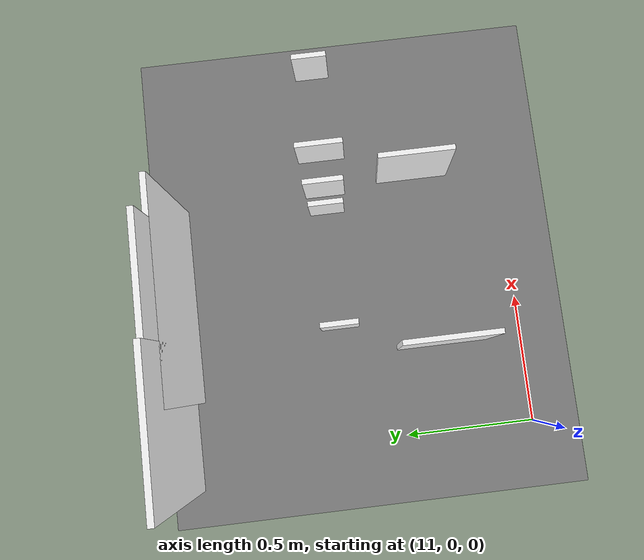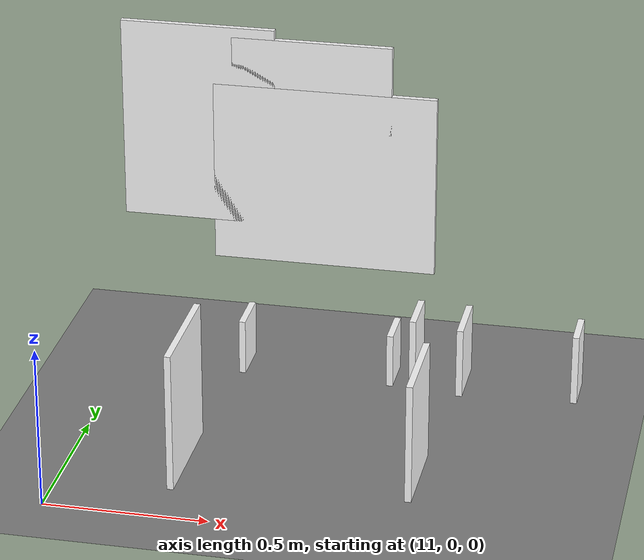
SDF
<sdf version="1.9">
 <world name="tunnel_world">
  <model name="ground_plane">
   <static>true</static>
   <link name="ground">
    <collision name="ground_collision">
     <geometry><plane><normal>0 0 1</normal><size>100 100</size></plane></geometry>
    </collision>
    <visual name="ground_visual">
     <geometry><plane><normal>0 0 1</normal><size>100 100</size></plane></geometry>
     <material>
      <diffuse>0.50 0.50 0.50 1</diffuse>
      <emissive>0.08 0.08 0.08 1</emissive>
      <ambient>0.5 0.5 0.5</ambient>
     </material>
    </visual>
   </link>
  </model>
  <model name="defect_equip_intrusion_04">
   <static>true</static>
   <pose>11.35 0.323 0.228 0 0 0</pose>
   <link name="link">
    <visual name="visual">
     <laser_retro>900</laser_retro>
     <geometry><box><size>0.02 0.361 0.436</size></box></geometry>
     <material>
      <ambient>1 1 1 1</ambient>
      <diffuse>1 1 1 1</diffuse>
      <emissive>0.05 0.05 0.05 1</emissive>
      <specular>0.05 0.05 0.05 1</specular>
      <pbr>
       <metal>
        <albedo_map>file:///home/ylf/workspace/inspection_robot/data_gen/textures/equip_intrusion_2.png</albedo_map>
        <metalness>0.0</metalness>
        <roughness>0.9</roughness>
       </metal>
      </pbr>
     </material>
    </visual>
   </link>
  </model>
  <model name="defect_equip_intrusion_06">
   <static>true</static>
   <pose>12.047 0.358 0.198 0 0 0</pose>
   <link name="link">
    <visual name="visual">
     <laser_retro>900</laser_retro>
     <geometry><box><size>0.02 0.291 0.377</size></box></geometry>
     <material>
      <ambient>1 1 1 1</ambient>
      <diffuse>1 1 1 1</diffuse>
      <emissive>0.05 0.05 0.05 1</emissive>
      <specular>0.05 0.05 0.05 1</specular>
      <pbr>
       <metal>
        <albedo_map>file:///home/ylf/workspace/inspection_robot/data_gen/textures/equip_intrusion_4.png</albedo_map>
        <metalness>0.0</metalness>
        <roughness>0.9</roughness>
       </metal>
      </pbr>
     </material>
    </visual>
   </link>
  </model>
  <model name="defect_leakage_04">
   <static>true</static>
   <pose>11.585 1.25 0.56 0 0 0</pose>
   <link name="link">
    <visual name="visual">
     <laser_retro>300</laser_retro>
     <geometry><box><size>0.721 0.02 0.599</size></box></geometry>
     <material>
      <ambient>1 1 1 1</ambient>
      <diffuse>1 1 1 1</diffuse>
      <emissive>0.05 0.05 0.05 1</emissive>
      <specular>0.05 0.05 0.05 1</specular>
      <pbr>
       <metal>
        <albedo_map>file:///home/ylf/workspace/inspection_robot/data_gen/textures/leakage_1.png</albedo_map>
        <metalness>0.0</metalness>
        <roughness>0.9</roughness>
       </metal>
      </pbr>
     </material>
    </visual>
    <collision name="collision"><geometry><box><size>0.721 0.02 0.599</size></box></geometry></collision>
   </link>
  </model>
  <model name="defect_leakage_06">
   <static>true</static>
   <pose>11.176 1.25 0.721 0 0 0</pose>
   <link name="link">
    <visual name="visual">
     <laser_retro>300</laser_retro>
     <geometry><box><size>0.498 0.02 0.662</size></box></geometry>
     <material>
      <ambient>1 1 1 1</ambient>
      <diffuse>1 1 1 1</diffuse>
      <emissive>0.05 0.05 0.05 1</emissive>
      <specular>0.05 0.05 0.05 1</specular>
      <pbr>
       <metal>
        <albedo_map>file:///home/ylf/workspace/inspection_robot/data_gen/textures/leakage_3.png</albedo_map>
        <metalness>0.0</metalness>
        <roughness>0.9</roughness>
       </metal>
      </pbr>
     </material>
    </visual>
    <collision name="collision"><geometry><box><size>0.498 0.02 0.662</size></box></geometry></collision>
   </link>
  </model>
  <model name="defect_rail_fastener_broken_03">
   <static>true</static>
   <pose>11.981 0.717 0.269 0 0 0</pose>
   <link name="link">
    <visual name="visual">
     <laser_retro>450</laser_retro>
     <geometry><box><size>0.02 0.154 0.227</size></box></geometry>
     <material>
      <ambient>1 1 1 1</ambient>
      <diffuse>1 1 1 1</diffuse>
      <emissive>0.05 0.05 0.05 1</emissive>
      <specular>0.05 0.05 0.05 1</specular>
      <pbr>
       <metal>
        <albedo_map>file:///home/ylf/workspace/inspection_robot/data_gen/textures/rail_fastener_broken_3.png</albedo_map>
        <metalness>0.0</metalness>
        <roughness>0.9</roughness>
       </metal>
      </pbr>
     </material>
    </visual>
   </link>
  </model>
  <model name="defect_rail_fastener_broken_06">
   <static>true</static>
   <pose>11.91 0.717 0.238 0 0 0</pose>
   <link name="link">
    <visual name="visual">
     <laser_retro>450</laser_retro>
     <geometry><box><size>0.02 0.134 0.167</size></box></geometry>
     <material>
      <ambient>1 1 1 1</ambient>
      <diffuse>1 1 1 1</diffuse>
      <emissive>0.05 0.05 0.05 1</emissive>
      <specular>0.05 0.05 0.05 1</specular>
      <pbr>
       <metal>
        <albedo_map>file:///home/ylf/workspace/inspection_robot/data_gen/textures/rail_fastener_broken_1.png</albedo_map>
        <metalness>0.0</metalness>
        <roughness>0.9</roughness>
       </metal>
      </pbr>
     </material>
    </visual>
   </link>
  </model>
  <model name="defect_rail_fastener_broken_08">
   <static>true</static>
   <pose>12.127 0.717 0.264 0 0 0</pose>
   <link name="link">
    <visual name="visual">
     <laser_retro>450</laser_retro>
     <geometry><box><size>0.02 0.183 0.218</size></box></geometry>
     <material>
      <ambient>1 1 1 1</ambient>
      <diffuse>1 1 1 1</diffuse>
      <emissive>0.05 0.05 0.05 1</emissive>
      <specular>0.05 0.05 0.05 1</specular>
      <pbr>
       <metal>
        <albedo_map>file:///home/ylf/workspace/inspection_robot/data_gen/textures/rail_fastener_broken_2.png</albedo_map>
        <metalness>0.0</metalness>
        <roughness>0.9</roughness>
       </metal>
      </pbr>
     </material>
    </visual>
   </link>
  </model>
  <model name="defect_rail_fastener_loose_03">
   <static>true</static>
   <pose>12.472 0.717 0.264 0 0 0</pose>
   <link name="link">
    <visual name="visual">
     <laser_retro>380</laser_retro>
     <geometry><box><size>0.02 0.133 0.218</size></box></geometry>
     <material>
      <ambient>1 1 1 1</ambient>
      <diffuse>1 1 1 1</diffuse>
      <emissive>0.05 0.05 0.05 1</emissive>
      <specular>0.05 0.05 0.05 1</specular>
      <pbr>
       <metal>
        <albedo_map>file:///home/ylf/workspace/inspection_robot/data_gen/textures/rail_fastener_loose_5.png</albedo_map>
        <metalness>0.0</metalness>
        <roughness>0.9</roughness>
       </metal>
      </pbr>
     </material>
    </visual>
   </link>
  </model>
  <model name="defect_rail_fastener_loose_05">
   <static>true</static>
   <pose>11.453 0.717 0.241 0 0 0</pose>
   <link name="link">
    <visual name="visual">
     <laser_retro>380</laser_retro>
     <geometry><box><size>0.02 0.144 0.172</size></box></geometry>
     <material>
      <ambient>1 1 1 1</ambient>
      <diffuse>1 1 1 1</diffuse>
      <emissive>0.05 0.05 0.05 1</emissive>
      <specular>0.05 0.05 0.05 1</specular>
      <pbr>
       <metal>
        <albedo_map>file:///home/ylf/workspace/inspection_robot/data_gen/textures/rail_fastener_loose_5.png</albedo_map>
        <metalness>0.0</metalness>
        <roughness>0.9</roughness>
       </metal>
      </pbr>
     </material>
    </visual>
   </link>
  </model>
  <model name="defect_spalling_03">
   <static>true</static>
   <pose>11.544 1.25 0.849 0 0 0</pose>
   <link name="link">
    <visual name="visual">
     <laser_retro>700</laser_retro>
     <geometry><box><size>0.515 0.02 0.343</size></box></geometry>
     <material>
      <ambient>1 1 1 1</ambient>
      <diffuse>1 1 1 1</diffuse>
      <emissive>0.05 0.05 0.05 1</emissive>
      <specular>0.05 0.05 0.05 1</specular>
      <pbr>
       <metal>
        <albedo_map>file:///home/ylf/workspace/inspection_robot/data_gen/textures/spalling_1.png</albedo_map>
        <metalness>0.0</metalness>
        <roughness>0.9</roughness>
       </metal>
      </pbr>
     </material>
    </visual>
    <collision name="collision"><geometry><box><size>0.515 0.02 0.343</size></box></geometry></collision>
   </link>
  </model>
 </world>
</sdf>
